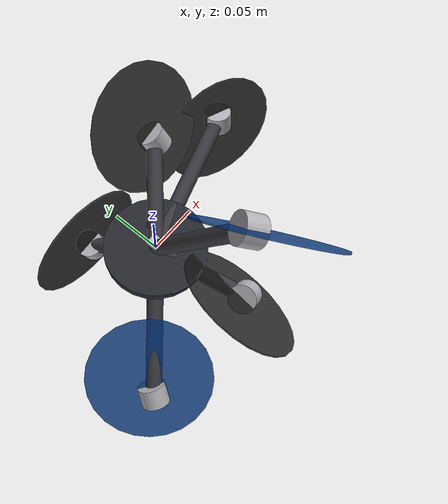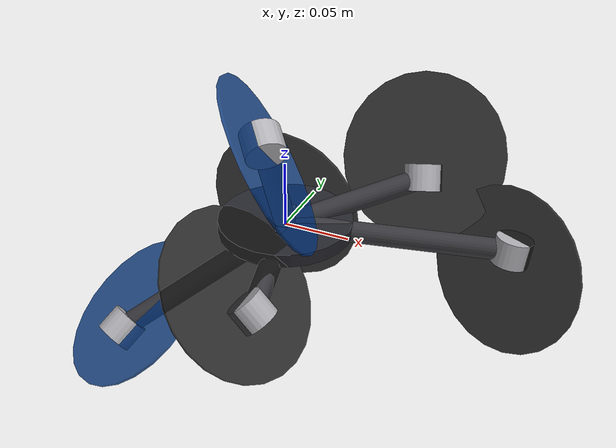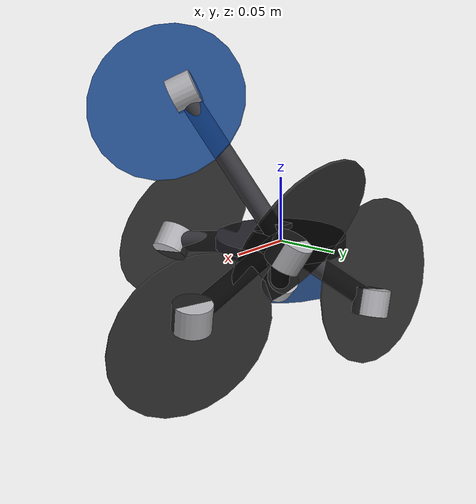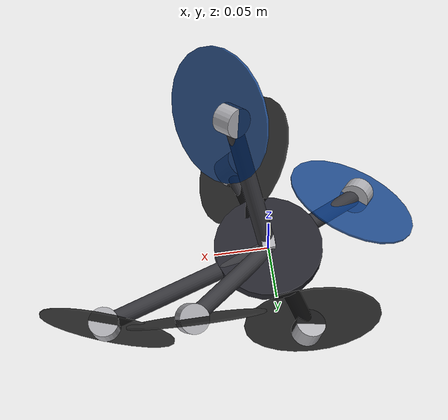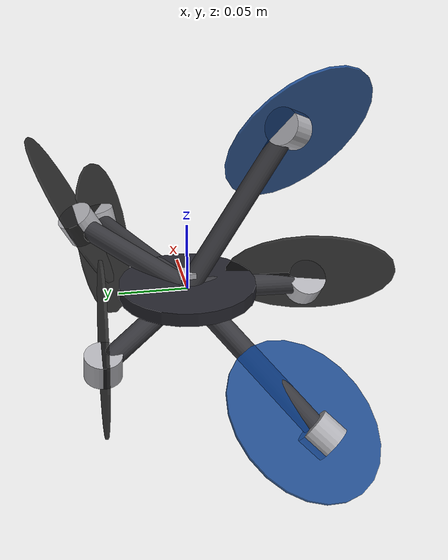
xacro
<?xml version="1.0"?>
<robot name="novel_hex_drone" xmlns:xacro="http://www.ros.org/wiki/xacro">
  <xacro:property name="pi" value="3.141592653589793"/>

  <material name="mat_core"><color rgba="0.15 0.15 0.18 1.0"/></material>
  <material name="mat_arm"><color rgba="0.22 0.22 0.24 1.0"/></material>
  <material name="mat_motor"><color rgba="0.70 0.70 0.72 1.0"/></material>
  <material name="mat_rotor_ccw"><color rgba="0.10 0.10 0.10 0.85"/></material>
  <material name="mat_rotor_cw"><color rgba="0.05 0.25 0.55 0.85"/></material>

  <xacro:macro name="inertial_box" params="mass x y z">
    <inertial><origin xyz="0 0 0" rpy="0 0 0"/><mass value="${mass}"/><inertia ixx="${mass*(y*y + z*z)/12.0}" ixy="0.0" ixz="0.0" iyy="${mass*(x*x + z*z)/12.0}" iyz="0.0" izz="${mass*(x*x + y*y)/12.0}"/></inertial>
  </xacro:macro>
  <xacro:macro name="inertial_cylinder_z" params="mass radius length">
    <inertial><origin xyz="0 0 0" rpy="0 0 0"/><mass value="${mass}"/><inertia ixx="${mass*(3*radius*radius + length*length)/12.0}" ixy="0.0" ixz="0.0" iyy="${mass*(3*radius*radius + length*length)/12.0}" iyz="0.0" izz="${0.5*mass*radius*radius}"/></inertial>
  </xacro:macro>

  <link name="base_link">
    <visual><geometry><cylinder radius="0.050000" length="0.010000"/></geometry><material name="mat_core"/></visual>
    <collision><geometry><cylinder radius="0.050000" length="0.010000"/></geometry></collision>
    <xacro:inertial_cylinder_z mass="0.400000" radius="0.050000" length="0.010000"/>
  </link>

  <link name="imu_link">
    <visual><origin xyz="0 0 0.012" rpy="0 0 0"/><geometry><box size="0.012 0.012 0.004"/></geometry><material name="mat_motor"/></visual>
    <collision><origin xyz="0 0 0.012" rpy="0 0 0"/><geometry><box size="0.012 0.012 0.004"/></geometry></collision>
    <xacro:inertial_box mass="0.005" x="0.012" y="0.012" z="0.004"/>
  </link>
  <joint name="imu_joint" type="fixed"><parent link="base_link"/><child link="imu_link"/><origin xyz="0 0 0" rpy="0 0 0"/></joint>

  <link name="arm_1_arm_link">
    <visual><origin xyz="0.083143 0 0" rpy="0 1.57079632679 0"/><geometry><cylinder radius="0.008000" length="0.166285"/></geometry><material name="mat_arm"/></visual>
    <collision><origin xyz="0.083143 0 0" rpy="0 1.57079632679 0"/><geometry><cylinder radius="0.008000" length="0.166285"/></geometry></collision>
    <xacro:inertial_cylinder_z mass="0.029931" radius="0.008000" length="0.166285"/>
  </link>
  <joint name="base_to_arm_1_arm_joint" type="fixed"><parent link="base_link"/><child link="arm_1_arm_link"/><origin xyz="0.000000 0.000000 0.000000" rpy="0.000000 0.060104 0.305937"/></joint>

  <link name="arm_1_motor_link">
    <visual><origin xyz="0 0 0" rpy="0 0 0"/><geometry><cylinder radius="0.014000" length="0.020000"/></geometry><material name="mat_motor"/></visual>
    <collision><origin xyz="0 0 0" rpy="0 0 0"/><geometry><cylinder radius="0.014000" length="0.020000"/></geometry></collision>
    <xacro:inertial_cylinder_z mass="0.060000" radius="0.014000" length="0.020000"/>
  </link>
  <joint name="arm_1_arm_to_motor_joint" type="fixed"><parent link="arm_1_arm_link"/><child link="arm_1_motor_link"/><origin xyz="0.166285 0.000000 0.000000" rpy="0.000000 2.951919 -2.227759"/></joint>

  <link name="arm_1_rotor_link">
    <visual><origin xyz="0 0 0" rpy="0 1.57079632679 0"/><geometry><cylinder radius="0.063500" length="0.002000"/></geometry><material name="mat_rotor_ccw"/></visual>
    <collision><origin xyz="0 0 0" rpy="0 1.57079632679 0"/><geometry><cylinder radius="0.063500" length="0.002000"/></geometry></collision>
    <xacro:inertial_cylinder_z mass="0.010000" radius="0.010000" length="0.006000"/>
  </link>
  <joint name="arm_1_motor_to_rotor_joint" type="fixed"><parent link="arm_1_motor_link"/><child link="arm_1_rotor_link"/><origin xyz="0 0 0.016" rpy="0 0 0"/></joint>

  <link name="arm_2_arm_link">
    <visual><origin xyz="0.068354 0 0" rpy="0 1.57079632679 0"/><geometry><cylinder radius="0.008000" length="0.136708"/></geometry><material name="mat_arm"/></visual>
    <collision><origin xyz="0.068354 0 0" rpy="0 1.57079632679 0"/><geometry><cylinder radius="0.008000" length="0.136708"/></geometry></collision>
    <xacro:inertial_cylinder_z mass="0.024607" radius="0.008000" length="0.136708"/>
  </link>
  <joint name="base_to_arm_2_arm_joint" type="fixed"><parent link="base_link"/><child link="arm_2_arm_link"/><origin xyz="0.000000 0.000000 0.000000" rpy="0.000000 -0.936650 -1.285414"/></joint>

  <link name="arm_2_motor_link">
    <visual><origin xyz="0 0 0" rpy="0 0 0"/><geometry><cylinder radius="0.014000" length="0.020000"/></geometry><material name="mat_motor"/></visual>
    <collision><origin xyz="0 0 0" rpy="0 0 0"/><geometry><cylinder radius="0.014000" length="0.020000"/></geometry></collision>
    <xacro:inertial_cylinder_z mass="0.060000" radius="0.014000" length="0.020000"/>
  </link>
  <joint name="arm_2_arm_to_motor_joint" type="fixed"><parent link="arm_2_arm_link"/><child link="arm_2_motor_link"/><origin xyz="0.136708 0.000000 0.000000" rpy="0.000000 -3.551112 1.242548"/></joint>

  <link name="arm_2_rotor_link">
    <visual><origin xyz="0 0 0" rpy="0 1.57079632679 0"/><geometry><cylinder radius="0.063500" length="0.002000"/></geometry><material name="mat_rotor_cw"/></visual>
    <collision><origin xyz="0 0 0" rpy="0 1.57079632679 0"/><geometry><cylinder radius="0.063500" length="0.002000"/></geometry></collision>
    <xacro:inertial_cylinder_z mass="0.010000" radius="0.010000" length="0.006000"/>
  </link>
  <joint name="arm_2_motor_to_rotor_joint" type="fixed"><parent link="arm_2_motor_link"/><child link="arm_2_rotor_link"/><origin xyz="0 0 0.016" rpy="0 0 0"/></joint>

  <link name="arm_3_arm_link">
    <visual><origin xyz="0.072575 0 0" rpy="0 1.57079632679 0"/><geometry><cylinder radius="0.008000" length="0.145151"/></geometry><material name="mat_arm"/></visual>
    <collision><origin xyz="0.072575 0 0" rpy="0 1.57079632679 0"/><geometry><cylinder radius="0.008000" length="0.145151"/></geometry></collision>
    <xacro:inertial_cylinder_z mass="0.026127" radius="0.008000" length="0.145151"/>
  </link>
  <joint name="base_to_arm_3_arm_joint" type="fixed"><parent link="base_link"/><child link="arm_3_arm_link"/><origin xyz="0.000000 0.000000 0.000000" rpy="0.000000 0.521866 -2.465228"/></joint>

  <link name="arm_3_motor_link">
    <visual><origin xyz="0 0 0" rpy="0 0 0"/><geometry><cylinder radius="0.014000" length="0.020000"/></geometry><material name="mat_motor"/></visual>
    <collision><origin xyz="0 0 0" rpy="0 0 0"/><geometry><cylinder radius="0.014000" length="0.020000"/></geometry></collision>
    <xacro:inertial_cylinder_z mass="0.060000" radius="0.014000" length="0.020000"/>
  </link>
  <joint name="arm_3_arm_to_motor_joint" type="fixed"><parent link="arm_3_arm_link"/><child link="arm_3_motor_link"/><origin xyz="0.145151 0.000000 0.000000" rpy="0.000000 1.417034 3.421702"/></joint>

  <link name="arm_3_rotor_link">
    <visual><origin xyz="0 0 0" rpy="0 1.57079632679 0"/><geometry><cylinder radius="0.063500" length="0.002000"/></geometry><material name="mat_rotor_cw"/></visual>
    <collision><origin xyz="0 0 0" rpy="0 1.57079632679 0"/><geometry><cylinder radius="0.063500" length="0.002000"/></geometry></collision>
    <xacro:inertial_cylinder_z mass="0.010000" radius="0.010000" length="0.006000"/>
  </link>
  <joint name="arm_3_motor_to_rotor_joint" type="fixed"><parent link="arm_3_motor_link"/><child link="arm_3_rotor_link"/><origin xyz="0 0 0.016" rpy="0 0 0"/></joint>

  <link name="arm_4_arm_link">
    <visual><origin xyz="0.041496 0 0" rpy="0 1.57079632679 0"/><geometry><cylinder radius="0.008000" length="0.082992"/></geometry><material name="mat_arm"/></visual>
    <collision><origin xyz="0.041496 0 0" rpy="0 1.57079632679 0"/><geometry><cylinder radius="0.008000" length="0.082992"/></geometry></collision>
    <xacro:inertial_cylinder_z mass="0.014939" radius="0.008000" length="0.082992"/>
  </link>
  <joint name="base_to_arm_4_arm_joint" type="fixed"><parent link="base_link"/><child link="arm_4_arm_link"/><origin xyz="0.000000 0.000000 0.000000" rpy="0.000000 0.533861 1.974086"/></joint>

  <link name="arm_4_motor_link">
    <visual><origin xyz="0 0 0" rpy="0 0 0"/><geometry><cylinder radius="0.014000" length="0.020000"/></geometry><material name="mat_motor"/></visual>
    <collision><origin xyz="0 0 0" rpy="0 0 0"/><geometry><cylinder radius="0.014000" length="0.020000"/></geometry></collision>
    <xacro:inertial_cylinder_z mass="0.060000" radius="0.014000" length="0.020000"/>
  </link>
  <joint name="arm_4_arm_to_motor_joint" type="fixed"><parent link="arm_4_arm_link"/><child link="arm_4_motor_link"/><origin xyz="0.082992 0.000000 0.000000" rpy="0.000000 -0.501545 -0.508698"/></joint>

  <link name="arm_4_rotor_link">
    <visual><origin xyz="0 0 0" rpy="0 1.57079632679 0"/><geometry><cylinder radius="0.063500" length="0.002000"/></geometry><material name="mat_rotor_ccw"/></visual>
    <collision><origin xyz="0 0 0" rpy="0 1.57079632679 0"/><geometry><cylinder radius="0.063500" length="0.002000"/></geometry></collision>
    <xacro:inertial_cylinder_z mass="0.010000" radius="0.010000" length="0.006000"/>
  </link>
  <joint name="arm_4_motor_to_rotor_joint" type="fixed"><parent link="arm_4_motor_link"/><child link="arm_4_rotor_link"/><origin xyz="0 0 0.016" rpy="0 0 0"/></joint>

  <link name="arm_5_arm_link">
    <visual><origin xyz="0.054429 0 0" rpy="0 1.57079632679 0"/><geometry><cylinder radius="0.008000" length="0.108857"/></geometry><material name="mat_arm"/></visual>
    <collision><origin xyz="0.054429 0 0" rpy="0 1.57079632679 0"/><geometry><cylinder radius="0.008000" length="0.108857"/></geometry></collision>
    <xacro:inertial_cylinder_z mass="0.019594" radius="0.008000" length="0.108857"/>
  </link>
  <joint name="base_to_arm_5_arm_joint" type="fixed"><parent link="base_link"/><child link="arm_5_arm_link"/><origin xyz="0.000000 0.000000 0.000000" rpy="0.000000 -0.199079 0.721446"/></joint>

  <link name="arm_5_motor_link">
    <visual><origin xyz="0 0 0" rpy="0 0 0"/><geometry><cylinder radius="0.014000" length="0.020000"/></geometry><material name="mat_motor"/></visual>
    <collision><origin xyz="0 0 0" rpy="0 0 0"/><geometry><cylinder radius="0.014000" length="0.020000"/></geometry></collision>
    <xacro:inertial_cylinder_z mass="0.060000" radius="0.014000" length="0.020000"/>
  </link>
  <joint name="arm_5_arm_to_motor_joint" type="fixed"><parent link="arm_5_arm_link"/><child link="arm_5_motor_link"/><origin xyz="0.108857 0.000000 0.000000" rpy="0.000000 -0.622142 -2.196572"/></joint>

  <link name="arm_5_rotor_link">
    <visual><origin xyz="0 0 0" rpy="0 1.57079632679 0"/><geometry><cylinder radius="0.063500" length="0.002000"/></geometry><material name="mat_rotor_ccw"/></visual>
    <collision><origin xyz="0 0 0" rpy="0 1.57079632679 0"/><geometry><cylinder radius="0.063500" length="0.002000"/></geometry></collision>
    <xacro:inertial_cylinder_z mass="0.010000" radius="0.010000" length="0.006000"/>
  </link>
  <joint name="arm_5_motor_to_rotor_joint" type="fixed"><parent link="arm_5_motor_link"/><child link="arm_5_rotor_link"/><origin xyz="0 0 0.016" rpy="0 0 0"/></joint>

  <link name="arm_6_arm_link">
    <visual><origin xyz="0.047951 0 0" rpy="0 1.57079632679 0"/><geometry><cylinder radius="0.008000" length="0.095903"/></geometry><material name="mat_arm"/></visual>
    <collision><origin xyz="0.047951 0 0" rpy="0 1.57079632679 0"/><geometry><cylinder radius="0.008000" length="0.095903"/></geometry></collision>
    <xacro:inertial_cylinder_z mass="0.017263" radius="0.008000" length="0.095903"/>
  </link>
  <joint name="base_to_arm_6_arm_joint" type="fixed"><parent link="base_link"/><child link="arm_6_arm_link"/><origin xyz="0.000000 0.000000 0.000000" rpy="0.000000 0.128616 -1.362630"/></joint>

  <link name="arm_6_motor_link">
    <visual><origin xyz="0 0 0" rpy="0 0 0"/><geometry><cylinder radius="0.014000" length="0.020000"/></geometry><material name="mat_motor"/></visual>
    <collision><origin xyz="0 0 0" rpy="0 0 0"/><geometry><cylinder radius="0.014000" length="0.020000"/></geometry></collision>
    <xacro:inertial_cylinder_z mass="0.060000" radius="0.014000" length="0.020000"/>
  </link>
  <joint name="arm_6_arm_to_motor_joint" type="fixed"><parent link="arm_6_arm_link"/><child link="arm_6_motor_link"/><origin xyz="0.095903 0.000000 0.000000" rpy="0.000000 0.741664 4.438734"/></joint>

  <link name="arm_6_rotor_link">
    <visual><origin xyz="0 0 0" rpy="0 1.57079632679 0"/><geometry><cylinder radius="0.063500" length="0.002000"/></geometry><material name="mat_rotor_ccw"/></visual>
    <collision><origin xyz="0 0 0" rpy="0 1.57079632679 0"/><geometry><cylinder radius="0.063500" length="0.002000"/></geometry></collision>
    <xacro:inertial_cylinder_z mass="0.010000" radius="0.010000" length="0.006000"/>
  </link>
  <joint name="arm_6_motor_to_rotor_joint" type="fixed"><parent link="arm_6_motor_link"/><child link="arm_6_rotor_link"/><origin xyz="0 0 0.016" rpy="0 0 0"/></joint>

</robot>
